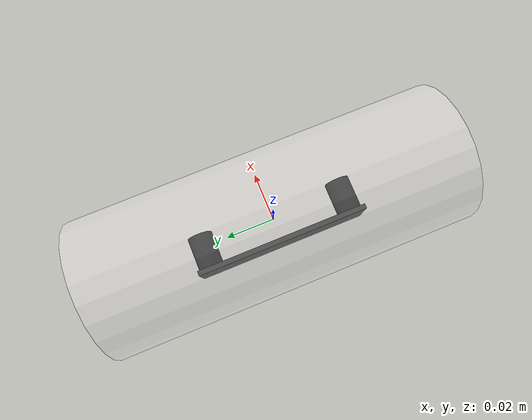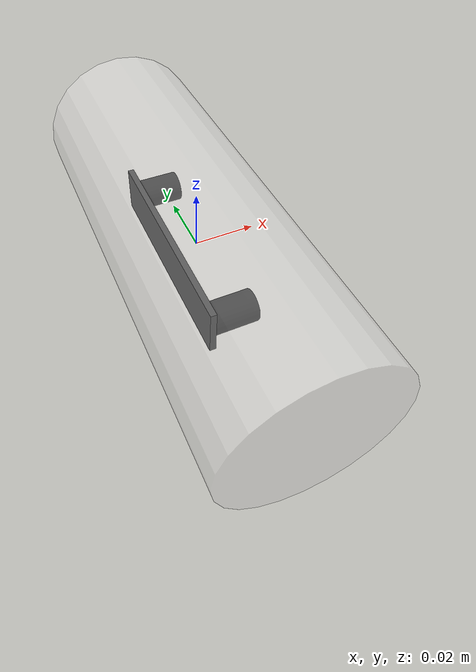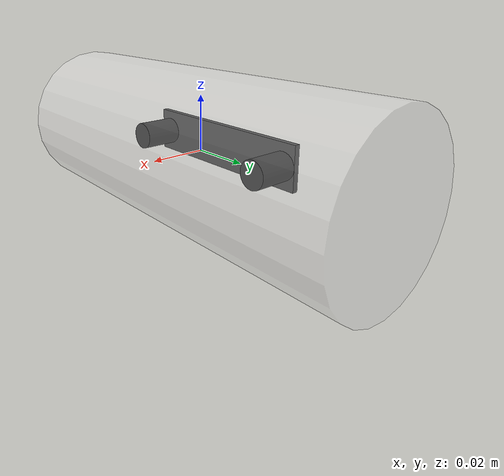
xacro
<?xml version="1.0"?>

<robot name="elp_standalone" xmlns:xacro="http://ros.org/wiki/xacro">
  <!-- include the elp_stereo_camera macro -->
  <xacro:include filename="$(find elp_stereo_camera)/description/elp_stereo_camera.urdf.xacro"/>

  <!-- use the elp_stereo_camera macro to create a camera with name "elp" -->
  <elp_stereo_camera name="elp"/>
</robot>

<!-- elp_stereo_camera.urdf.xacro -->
<robot name="elp_stereo_camera" xmlns:xacro="http://ros.org/wiki/xacro">
  <xacro:property name="M_PI" value="3.1415926535897931" />
  <xacro:property name="INTEROCULAR" value="0.060" />
  <xacro:property name="BOARD_THICKNESS" value="0.002" />
  <xacro:property name="LENS_LENGTH" value="0.014" />

  <xacro:macro name="elp_stereo_camera" params="name">
    <link name="${name}">
      <visual>
        <geometry>
          <cylinder length="0.150" radius="0.029"/>
        </geometry>
        <origin rpy="${M_PI/2} 0 0"/>
        <material name="polycarb">
          <color rgba="1 1 1 0.3"/>
        </material>
      </visual>
    </link>

    <link name="${name}_pcb">
      <visual>
        <geometry>
          <box size="0.002 0.070 .016"/>
        </geometry>
        <material name="gray">
          <color rgba="0.1 0.1 0.1 1"/>
        </material>
      </visual>
    </link>

    <link name="${name}_left_frame">
      <visual>
        <geometry>
          <cylinder length="${LENS_LENGTH}" radius="0.005"/>
        </geometry>
        <origin xyz="${-LENS_LENGTH/2} 0 0" rpy="0 ${M_PI/2} 0"/>
        <material name="black">
          <color rgba="0 0 0 1"/>
        </material>
      </visual>
    </link>

    <link name="${name}_left_optical_frame">
    </link>

    <link name="${name}_right_frame">
      <visual>
        <geometry>
          <cylinder length="${LENS_LENGTH}" radius="0.005"/>
        </geometry>
        <origin xyz="${-LENS_LENGTH/2} 0 0" rpy="0 ${M_PI/2} 0"/>
        <material name="black">
          <color rgba="0 0 0 1"/>
        </material>
      </visual>
    </link>

    <link name="${name}_right_optical_frame">
    </link>

    <joint name="${name}_to_${name}_pcb" type="fixed">
      <parent link="${name}"/>
      <child link="${name}_pcb"/>
      <origin xyz="-0.010 0 0"/>
    </joint>

    <joint name="${name}_pcb_to_${name}_left_frame" type="fixed">
      <parent link="${name}_pcb"/>
      <child link="${name}_left_frame"/>
      <origin xyz="${BOARD_THICKNESS/2 + LENS_LENGTH} ${INTEROCULAR/2} 0"/>
    </joint>

    <joint name="${name}_left_frame_to_${name}_left_optical_frame" type="fixed">
      <parent link="${name}_left_frame"/>
      <child link="${name}_left_optical_frame"/>
      <origin xyz="0 0 0" rpy="${-M_PI/2} 0 ${-M_PI/2}"/>
    </joint>

    <joint name="${name}_pcb_to_${name}_right_frame" type="fixed">
      <parent link="${name}_pcb"/>
      <child link="${name}_right_frame"/>
      <origin xyz="${BOARD_THICKNESS/2 + LENS_LENGTH} ${-INTEROCULAR/2} 0"/>
    </joint>

    <joint name="${name}_right_frame_to_${name}_right_optical_frame" type="fixed">
      <parent link="${name}_right_frame"/>
      <child link="${name}_right_optical_frame"/>
      <origin xyz="0 0 0" rpy="${-M_PI/2} 0 ${-M_PI/2}"/>
    </joint>
  </xacro:macro>
</robot>
